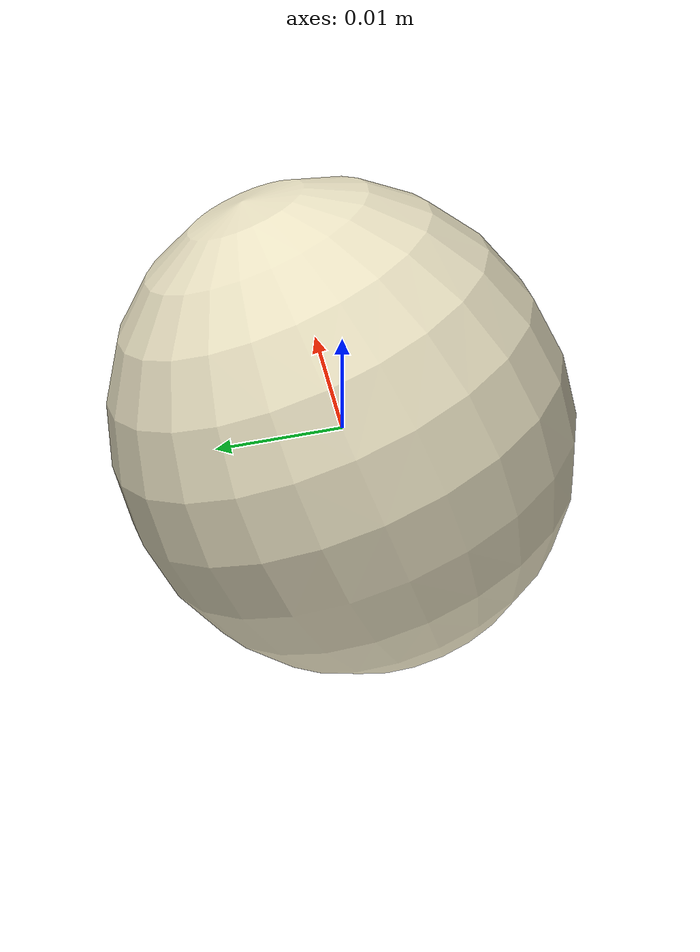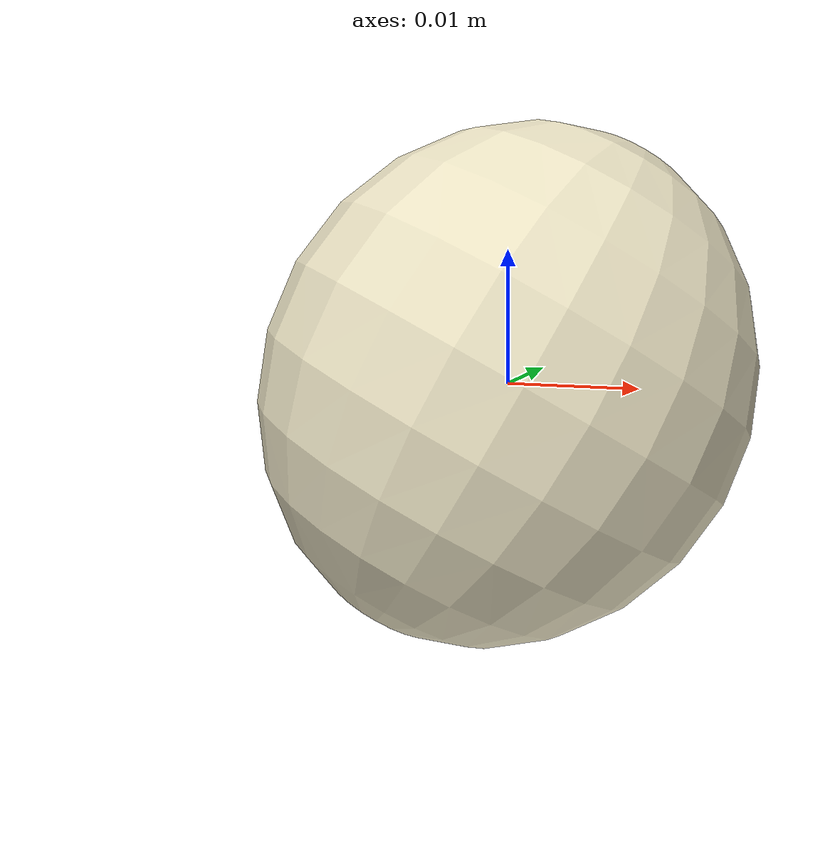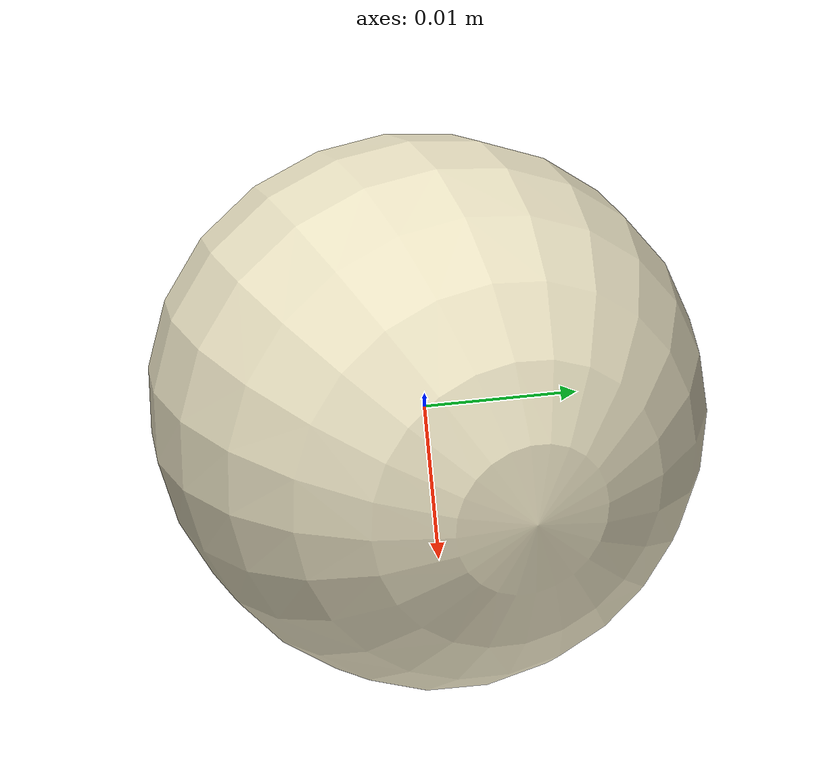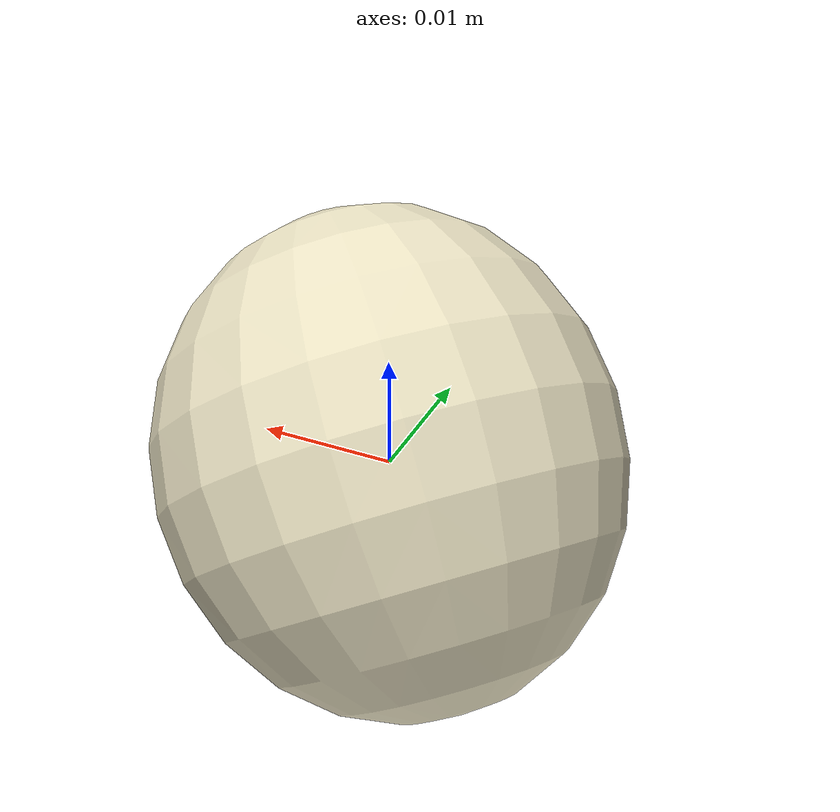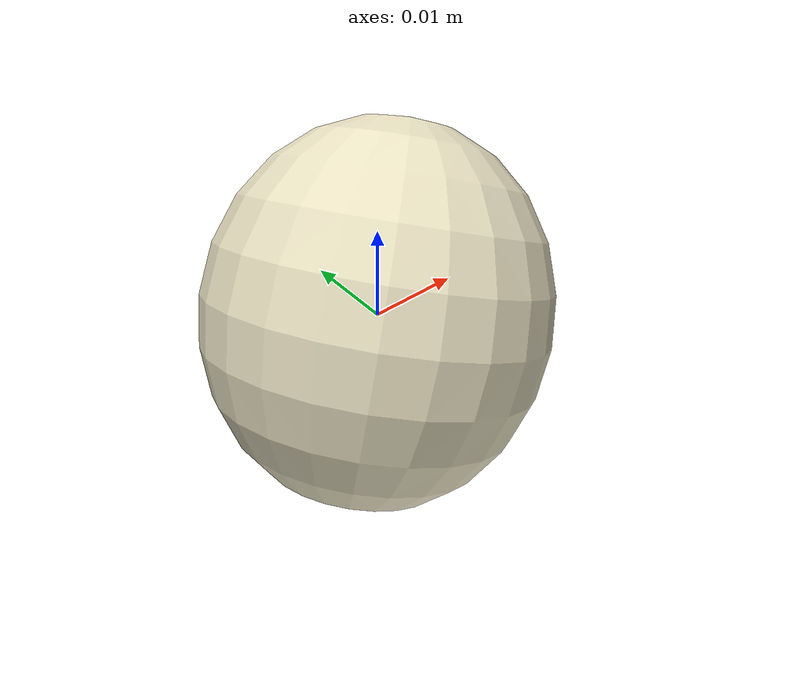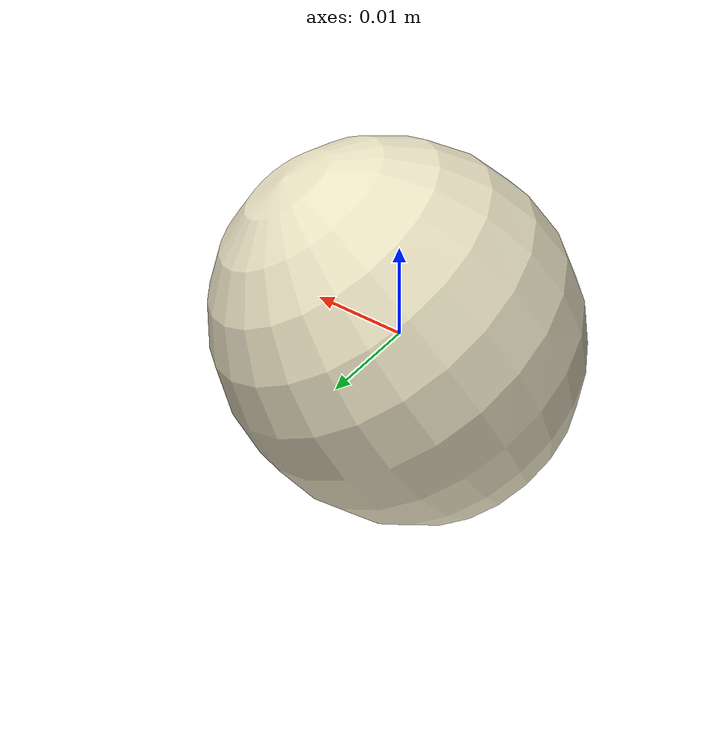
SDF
<?xml version="1.0"?>
<sdf version="1.7">
  <model name="cotton_pick_A_05">
    <static>false</static>
    <allow_auto_disable>false</allow_auto_disable>
    <link name="cotton_pick_A_05_link">
      <gravity>false</gravity>
      <self_collide>false</self_collide>
      <inertial>
        <mass>0.01200</mass>
        <inertia>
          <ixx>0.00000151</ixx>
          <iyy>0.00000151</iyy>
          <izz>0.00000151</izz>
          <ixy>0</ixy>
          <ixz>0</ixz>
          <iyz>0</iyz>
        </inertia>
      </inertial>
      <visual name="cotton_pick_A_05_visual">
        <geometry>
          <mesh>
            <uri>model://cotton_pick_A_05/meshes/cotton_pick_A_05.dae</uri>
          </mesh>
        </geometry>
      </visual>
      <collision name="cotton_pick_A_05_sphere_collision">
        <geometry>
          <sphere>
            <radius>0.01773</radius>
          </sphere>
        </geometry>
        <surface>
          <friction>
            <ode>
              <mu>1.6</mu>
              <mu2>1.6</mu2>
            </ode>
          </friction>
          <contact>
            <ode>
              <kp>8000</kp>
              <kd>80</kd>
            </ode>
          </contact>
        </surface>
      </collision>
    </link>
  </model>
</sdf>
